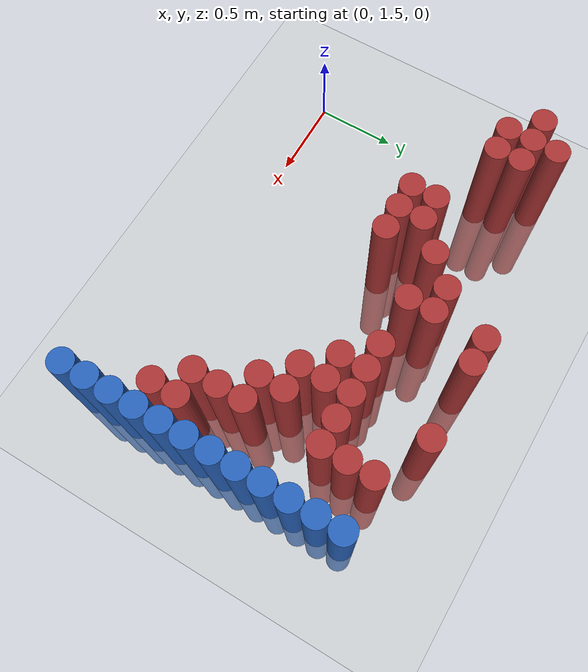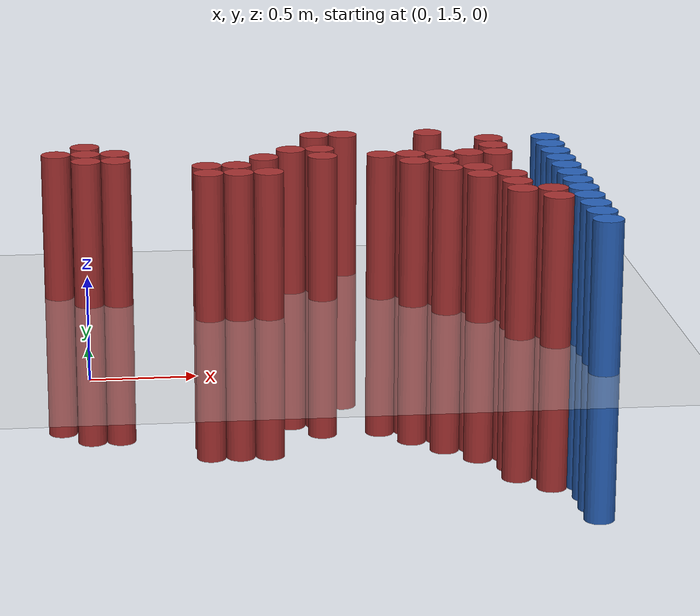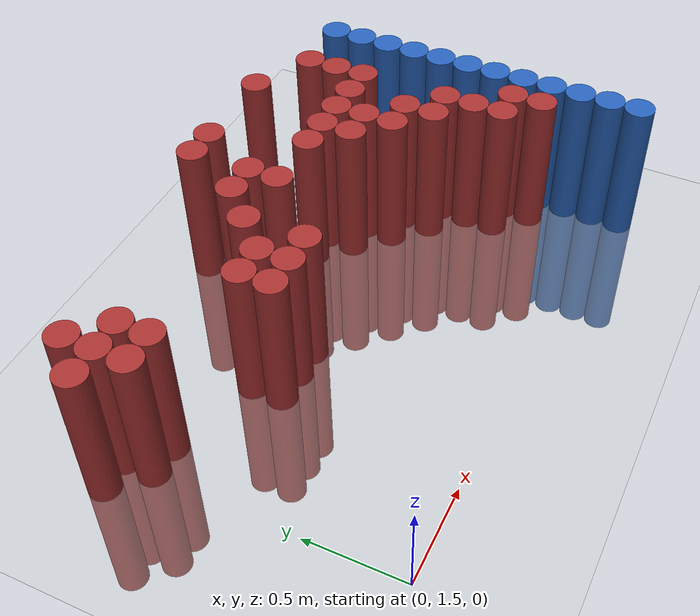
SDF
<sdf version="1.6">
 <world name="default">
  <model name="ground_plane">
   <static>1</static>
   <link name="link">
    <collision name="collision">
     <geometry><plane><normal>0 0 1</normal><size>100 100</size></plane></geometry>
     <surface><friction><ode><mu>100</mu><mu2>50</mu2></ode></friction></surface>
    </collision>
    <visual name="visual">
     <cast_shadows>0</cast_shadows>
     <geometry><plane><normal>0 0 1</normal><size>100 100</size></plane></geometry>
     <material>
      <script><uri>file://media/materials/scripts/gazebo.material</uri><name>Gazebo/Grey</name></script>
     </material>
    </visual>
   </link>
  </model>
  <model name="unit_cylinder_175">
   <static>1</static>
   <pose>-0.125000 2.875000 0.000000 0.000000 0.000000 0.000000</pose>
   <link name="link">
    <inertial>
     <mass>1</mass>
     <inertia><ixx>0.145833</ixx><ixy>0</ixy><ixz>0</ixz><iyy>0.145833</iyy><iyz>0</iyz><izz>0.125</izz></inertia>
    </inertial>
    <collision name="collision">
     <geometry><cylinder><radius>0.075000</radius><length>1.5</length></cylinder></geometry>
    </collision>
    <visual name="visual">
     <geometry><cylinder><radius>0.075000</radius><length>1.5</length></cylinder></geometry>
     <material>
      <ambient>0.648000 0.192000 0.192000 1</ambient>
      <diffuse>0.648000 0.192000 0.192000 1</diffuse>
     </material>
     <material>
      <script><name>Gazebo/Grey</name><uri>file://media/materials/scripts/gazebo.material</uri></script>
     </material>
    </visual>
   </link>
  </model>
  <model name="unit_cylinder_180">
   <static>1</static>
   <pose>0.025000 2.725000 0.000000 0.000000 0.000000 0.000000</pose>
   <link name="link">
    <inertial>
     <mass>1</mass>
     <inertia><ixx>0.145833</ixx><ixy>0</ixy><ixz>0</ixz><iyy>0.145833</iyy><iyz>0</iyz><izz>0.125</izz></inertia>
    </inertial>
    <collision name="collision">
     <geometry><cylinder><radius>0.075000</radius><length>1.5</length></cylinder></geometry>
    </collision>
    <visual name="visual">
     <geometry><cylinder><radius>0.075000</radius><length>1.5</length></cylinder></geometry>
     <material>
      <ambient>0.648000 0.192000 0.192000 1</ambient>
      <diffuse>0.648000 0.192000 0.192000 1</diffuse>
     </material>
     <material>
      <script><name>Gazebo/Grey</name><uri>file://media/materials/scripts/gazebo.material</uri></script>
     </material>
    </visual>
   </link>
  </model>
  <model name="unit_cylinder_181">
   <static>1</static>
   <pose>0.025000 2.875000 0.000000 0.000000 0.000000 0.000000</pose>
   <link name="link">
    <inertial>
     <mass>1</mass>
     <inertia><ixx>0.145833</ixx><ixy>0</ixy><ixz>0</ixz><iyy>0.145833</iyy><iyz>0</iyz><izz>0.125</izz></inertia>
    </inertial>
    <collision name="collision">
     <geometry><cylinder><radius>0.075000</radius><length>1.5</length></cylinder></geometry>
    </collision>
    <visual name="visual">
     <geometry><cylinder><radius>0.075000</radius><length>1.5</length></cylinder></geometry>
     <material>
      <ambient>0.648000 0.192000 0.192000 1</ambient>
      <diffuse>0.648000 0.192000 0.192000 1</diffuse>
     </material>
     <material>
      <script><name>Gazebo/Grey</name><uri>file://media/materials/scripts/gazebo.material</uri></script>
     </material>
    </visual>
   </link>
  </model>
  <model name="unit_cylinder_182">
   <static>1</static>
   <pose>0.025000 3.025000 0.000000 0.000000 0.000000 0.000000</pose>
   <link name="link">
    <inertial>
     <mass>1</mass>
     <inertia><ixx>0.145833</ixx><ixy>0</ixy><ixz>0</ixz><iyy>0.145833</iyy><iyz>0</iyz><izz>0.125</izz></inertia>
    </inertial>
    <collision name="collision">
     <geometry><cylinder><radius>0.075000</radius><length>1.5</length></cylinder></geometry>
    </collision>
    <visual name="visual">
     <geometry><cylinder><radius>0.075000</radius><length>1.5</length></cylinder></geometry>
     <material>
      <ambient>0.648000 0.192000 0.192000 1</ambient>
      <diffuse>0.648000 0.192000 0.192000 1</diffuse>
     </material>
     <material>
      <script><name>Gazebo/Grey</name><uri>file://media/materials/scripts/gazebo.material</uri></script>
     </material>
    </visual>
   </link>
  </model>
  <model name="unit_cylinder_183">
   <static>1</static>
   <pose>0.175000 2.725000 0.000000 0.000000 0.000000 0.000000</pose>
   <link name="link">
    <inertial>
     <mass>1</mass>
     <inertia><ixx>0.145833</ixx><ixy>0</ixy><ixz>0</ixz><iyy>0.145833</iyy><iyz>0</iyz><izz>0.125</izz></inertia>
    </inertial>
    <collision name="collision">
     <geometry><cylinder><radius>0.075000</radius><length>1.5</length></cylinder></geometry>
    </collision>
    <visual name="visual">
     <geometry><cylinder><radius>0.075000</radius><length>1.5</length></cylinder></geometry>
     <material>
      <ambient>0.648000 0.192000 0.192000 1</ambient>
      <diffuse>0.648000 0.192000 0.192000 1</diffuse>
     </material>
     <material>
      <script><name>Gazebo/Grey</name><uri>file://media/materials/scripts/gazebo.material</uri></script>
     </material>
    </visual>
   </link>
  </model>
  <model name="unit_cylinder_184">
   <static>1</static>
   <pose>0.175000 2.875000 0.000000 0.000000 0.000000 0.000000</pose>
   <link name="link">
    <inertial>
     <mass>1</mass>
     <inertia><ixx>0.145833</ixx><ixy>0</ixy><ixz>0</ixz><iyy>0.145833</iyy><iyz>0</iyz><izz>0.125</izz></inertia>
    </inertial>
    <collision name="collision">
     <geometry><cylinder><radius>0.075000</radius><length>1.5</length></cylinder></geometry>
    </collision>
    <visual name="visual">
     <geometry><cylinder><radius>0.075000</radius><length>1.5</length></cylinder></geometry>
     <material>
      <ambient>0.648000 0.192000 0.192000 1</ambient>
      <diffuse>0.648000 0.192000 0.192000 1</diffuse>
     </material>
     <material>
      <script><name>Gazebo/Grey</name><uri>file://media/materials/scripts/gazebo.material</uri></script>
     </material>
    </visual>
   </link>
  </model>
  <model name="unit_cylinder_191">
   <static>1</static>
   <pose>0.625000 2.425000 0.000000 0.000000 0.000000 0.000000</pose>
   <link name="link">
    <inertial>
     <mass>1</mass>
     <inertia><ixx>0.145833</ixx><ixy>0</ixy><ixz>0</ixz><iyy>0.145833</iyy><iyz>0</iyz><izz>0.125</izz></inertia>
    </inertial>
    <collision name="collision">
     <geometry><cylinder><radius>0.075000</radius><length>1.5</length></cylinder></geometry>
    </collision>
    <visual name="visual">
     <geometry><cylinder><radius>0.075000</radius><length>1.5</length></cylinder></geometry>
     <material>
      <ambient>0.648000 0.192000 0.192000 1</ambient>
      <diffuse>0.648000 0.192000 0.192000 1</diffuse>
     </material>
     <material>
      <script><name>Gazebo/Grey</name><uri>file://media/materials/scripts/gazebo.material</uri></script>
     </material>
    </visual>
   </link>
  </model>
  <model name="unit_cylinder_192">
   <static>1</static>
   <pose>0.625000 2.575000 0.000000 0.000000 0.000000 0.000000</pose>
   <link name="link">
    <inertial>
     <mass>1</mass>
     <inertia><ixx>0.145833</ixx><ixy>0</ixy><ixz>0</ixz><iyy>0.145833</iyy><iyz>0</iyz><izz>0.125</izz></inertia>
    </inertial>
    <collision name="collision">
     <geometry><cylinder><radius>0.075000</radius><length>1.5</length></cylinder></geometry>
    </collision>
    <visual name="visual">
     <geometry><cylinder><radius>0.075000</radius><length>1.5</length></cylinder></geometry>
     <material>
      <ambient>0.648000 0.192000 0.192000 1</ambient>
      <diffuse>0.648000 0.192000 0.192000 1</diffuse>
     </material>
     <material>
      <script><name>Gazebo/Grey</name><uri>file://media/materials/scripts/gazebo.material</uri></script>
     </material>
    </visual>
   </link>
  </model>
  <model name="unit_cylinder_198">
   <static>1</static>
   <pose>0.775000 2.425000 0.000000 0.000000 0.000000 0.000000</pose>
   <link name="link">
    <inertial>
     <mass>1</mass>
     <inertia><ixx>0.145833</ixx><ixy>0</ixy><ixz>0</ixz><iyy>0.145833</iyy><iyz>0</iyz><izz>0.125</izz></inertia>
    </inertial>
    <collision name="collision">
     <geometry><cylinder><radius>0.075000</radius><length>1.5</length></cylinder></geometry>
    </collision>
    <visual name="visual">
     <geometry><cylinder><radius>0.075000</radius><length>1.5</length></cylinder></geometry>
     <material>
      <ambient>0.648000 0.192000 0.192000 1</ambient>
      <diffuse>0.648000 0.192000 0.192000 1</diffuse>
     </material>
     <material>
      <script><name>Gazebo/Grey</name><uri>file://media/materials/scripts/gazebo.material</uri></script>
     </material>
    </visual>
   </link>
  </model>
  <model name="unit_cylinder_199">
   <static>1</static>
   <pose>0.775000 2.575000 0.000000 0.000000 0.000000 0.000000</pose>
   <link name="link">
    <inertial>
     <mass>1</mass>
     <inertia><ixx>0.145833</ixx><ixy>0</ixy><ixz>0</ixz><iyy>0.145833</iyy><iyz>0</iyz><izz>0.125</izz></inertia>
    </inertial>
    <collision name="collision">
     <geometry><cylinder><radius>0.075000</radius><length>1.5</length></cylinder></geometry>
    </collision>
    <visual name="visual">
     <geometry><cylinder><radius>0.075000</radius><length>1.5</length></cylinder></geometry>
     <material>
      <ambient>0.648000 0.192000 0.192000 1</ambient>
      <diffuse>0.648000 0.192000 0.192000 1</diffuse>
     </material>
     <material>
      <script><name>Gazebo/Grey</name><uri>file://media/materials/scripts/gazebo.material</uri></script>
     </material>
    </visual>
   </link>
  </model>
  <model name="unit_cylinder_203">
   <static>1</static>
   <pose>0.925000 2.425000 0.000000 0.000000 0.000000 0.000000</pose>
   <link name="link">
    <inertial>
     <mass>1</mass>
     <inertia><ixx>0.145833</ixx><ixy>0</ixy><ixz>0</ixz><iyy>0.145833</iyy><iyz>0</iyz><izz>0.125</izz></inertia>
    </inertial>
    <collision name="collision">
     <geometry><cylinder><radius>0.075000</radius><length>1.5</length></cylinder></geometry>
    </collision>
    <visual name="visual">
     <geometry><cylinder><radius>0.075000</radius><length>1.5</length></cylinder></geometry>
     <material>
      <ambient>0.648000 0.192000 0.192000 1</ambient>
      <diffuse>0.648000 0.192000 0.192000 1</diffuse>
     </material>
     <material>
      <script><name>Gazebo/Grey</name><uri>file://media/materials/scripts/gazebo.material</uri></script>
     </material>
    </visual>
   </link>
  </model>
  <model name="unit_cylinder_204">
   <static>1</static>
   <pose>0.925000 2.725000 0.000000 0.000000 0.000000 0.000000</pose>
   <link name="link">
    <inertial>
     <mass>1</mass>
     <inertia><ixx>0.145833</ixx><ixy>0</ixy><ixz>0</ixz><iyy>0.145833</iyy><iyz>0</iyz><izz>0.125</izz></inertia>
    </inertial>
    <collision name="collision">
     <geometry><cylinder><radius>0.075000</radius><length>1.5</length></cylinder></geometry>
    </collision>
    <visual name="visual">
     <geometry><cylinder><radius>0.075000</radius><length>1.5</length></cylinder></geometry>
     <material>
      <ambient>0.648000 0.192000 0.192000 1</ambient>
      <diffuse>0.648000 0.192000 0.192000 1</diffuse>
     </material>
     <material>
      <script><name>Gazebo/Grey</name><uri>file://media/materials/scripts/gazebo.material</uri></script>
     </material>
    </visual>
   </link>
  </model>
  <model name="unit_cylinder_209">
   <static>1</static>
   <pose>1.075000 2.875000 0.000000 0.000000 0.000000 0.000000</pose>
   <link name="link">
    <inertial>
     <mass>1</mass>
     <inertia><ixx>0.145833</ixx><ixy>0</ixy><ixz>0</ixz><iyy>0.145833</iyy><iyz>0</iyz><izz>0.125</izz></inertia>
    </inertial>
    <collision name="collision">
     <geometry><cylinder><radius>0.075000</radius><length>1.5</length></cylinder></geometry>
    </collision>
    <visual name="visual">
     <geometry><cylinder><radius>0.075000</radius><length>1.5</length></cylinder></geometry>
     <material>
      <ambient>0.648000 0.192000 0.192000 1</ambient>
      <diffuse>0.648000 0.192000 0.192000 1</diffuse>
     </material>
     <material>
      <script><name>Gazebo/Grey</name><uri>file://media/materials/scripts/gazebo.material</uri></script>
     </material>
    </visual>
   </link>
  </model>
  <model name="unit_cylinder_212">
   <static>1</static>
   <pose>1.225000 2.725000 0.000000 0.000000 0.000000 0.000000</pose>
   <link name="link">
    <inertial>
     <mass>1</mass>
     <inertia><ixx>0.145833</ixx><ixy>0</ixy><ixz>0</ixz><iyy>0.145833</iyy><iyz>0</iyz><izz>0.125</izz></inertia>
    </inertial>
    <collision name="collision">
     <geometry><cylinder><radius>0.075000</radius><length>1.5</length></cylinder></geometry>
    </collision>
    <visual name="visual">
     <geometry><cylinder><radius>0.075000</radius><length>1.5</length></cylinder></geometry>
     <material>
      <ambient>0.648000 0.192000 0.192000 1</ambient>
      <diffuse>0.648000 0.192000 0.192000 1</diffuse>
     </material>
     <material>
      <script><name>Gazebo/Grey</name><uri>file://media/materials/scripts/gazebo.material</uri></script>
     </material>
    </visual>
   </link>
  </model>
  <model name="unit_cylinder_213">
   <static>1</static>
   <pose>1.225000 2.875000 0.000000 0.000000 0.000000 0.000000</pose>
   <link name="link">
    <inertial>
     <mass>1</mass>
     <inertia><ixx>0.145833</ixx><ixy>0</ixy><ixz>0</ixz><iyy>0.145833</iyy><iyz>0</iyz><izz>0.125</izz></inertia>
    </inertial>
    <collision name="collision">
     <geometry><cylinder><radius>0.075000</radius><length>1.5</length></cylinder></geometry>
    </collision>
    <visual name="visual">
     <geometry><cylinder><radius>0.075000</radius><length>1.5</length></cylinder></geometry>
     <material>
      <ambient>0.648000 0.192000 0.192000 1</ambient>
      <diffuse>0.648000 0.192000 0.192000 1</diffuse>
     </material>
     <material>
      <script><name>Gazebo/Grey</name><uri>file://media/materials/scripts/gazebo.material</uri></script>
     </material>
    </visual>
   </link>
  </model>
  <model name="unit_cylinder_214">
   <static>1</static>
   <pose>1.225000 3.175000 0.000000 0.000000 0.000000 0.000000</pose>
   <link name="link">
    <inertial>
     <mass>1</mass>
     <inertia><ixx>0.145833</ixx><ixy>0</ixy><ixz>0</ixz><iyy>0.145833</iyy><iyz>0</iyz><izz>0.125</izz></inertia>
    </inertial>
    <collision name="collision">
     <geometry><cylinder><radius>0.075000</radius><length>1.5</length></cylinder></geometry>
    </collision>
    <visual name="visual">
     <geometry><cylinder><radius>0.075000</radius><length>1.5</length></cylinder></geometry>
     <material>
      <ambient>0.648000 0.192000 0.192000 1</ambient>
      <diffuse>0.648000 0.192000 0.192000 1</diffuse>
     </material>
     <material>
      <script><name>Gazebo/Grey</name><uri>file://media/materials/scripts/gazebo.material</uri></script>
     </material>
    </visual>
   </link>
  </model>
  <model name="unit_cylinder_219">
   <static>1</static>
   <pose>1.375000 3.175000 0.000000 0.000000 0.000000 0.000000</pose>
   <link name="link">
    <inertial>
     <mass>1</mass>
     <inertia><ixx>0.145833</ixx><ixy>0</ixy><ixz>0</ixz><iyy>0.145833</iyy><iyz>0</iyz><izz>0.125</izz></inertia>
    </inertial>
    <collision name="collision">
     <geometry><cylinder><radius>0.075000</radius><length>1.5</length></cylinder></geometry>
    </collision>
    <visual name="visual">
     <geometry><cylinder><radius>0.075000</radius><length>1.5</length></cylinder></geometry>
     <material>
      <ambient>0.648000 0.192000 0.192000 1</ambient>
      <diffuse>0.648000 0.192000 0.192000 1</diffuse>
     </material>
     <material>
      <script><name>Gazebo/Grey</name><uri>file://media/materials/scripts/gazebo.material</uri></script>
     </material>
    </visual>
   </link>
  </model>
  <model name="unit_cylinder_222">
   <static>1</static>
   <pose>1.525000 2.725000 0.000000 0.000000 0.000000 0.000000</pose>
   <link name="link">
    <inertial>
     <mass>1</mass>
     <inertia><ixx>0.145833</ixx><ixy>0</ixy><ixz>0</ixz><iyy>0.145833</iyy><iyz>0</iyz><izz>0.125</izz></inertia>
    </inertial>
    <collision name="collision">
     <geometry><cylinder><radius>0.075000</radius><length>1.5</length></cylinder></geometry>
    </collision>
    <visual name="visual">
     <geometry><cylinder><radius>0.075000</radius><length>1.5</length></cylinder></geometry>
     <material>
      <ambient>0.648000 0.192000 0.192000 1</ambient>
      <diffuse>0.648000 0.192000 0.192000 1</diffuse>
     </material>
     <material>
      <script><name>Gazebo/Grey</name><uri>file://media/materials/scripts/gazebo.material</uri></script>
     </material>
    </visual>
   </link>
  </model>
  <model name="unit_cylinder_223">
   <static>1</static>
   <pose>1.675000 2.575000 0.000000 0.000000 0.000000 0.000000</pose>
   <link name="link">
    <inertial>
     <mass>1</mass>
     <inertia><ixx>0.145833</ixx><ixy>0</ixy><ixz>0</ixz><iyy>0.145833</iyy><iyz>0</iyz><izz>0.125</izz></inertia>
    </inertial>
    <collision name="collision">
     <geometry><cylinder><radius>0.075000</radius><length>1.5</length></cylinder></geometry>
    </collision>
    <visual name="visual">
     <geometry><cylinder><radius>0.075000</radius><length>1.5</length></cylinder></geometry>
     <material>
      <ambient>0.648000 0.192000 0.192000 1</ambient>
      <diffuse>0.648000 0.192000 0.192000 1</diffuse>
     </material>
     <material>
      <script><name>Gazebo/Grey</name><uri>file://media/materials/scripts/gazebo.material</uri></script>
     </material>
    </visual>
   </link>
  </model>
  <model name="unit_cylinder_224">
   <static>1</static>
   <pose>1.675000 2.725000 0.000000 0.000000 0.000000 0.000000</pose>
   <link name="link">
    <inertial>
     <mass>1</mass>
     <inertia><ixx>0.145833</ixx><ixy>0</ixy><ixz>0</ixz><iyy>0.145833</iyy><iyz>0</iyz><izz>0.125</izz></inertia>
    </inertial>
    <collision name="collision">
     <geometry><cylinder><radius>0.075000</radius><length>1.5</length></cylinder></geometry>
    </collision>
    <visual name="visual">
     <geometry><cylinder><radius>0.075000</radius><length>1.5</length></cylinder></geometry>
     <material>
      <ambient>0.648000 0.192000 0.192000 1</ambient>
      <diffuse>0.648000 0.192000 0.192000 1</diffuse>
     </material>
     <material>
      <script><name>Gazebo/Grey</name><uri>file://media/materials/scripts/gazebo.material</uri></script>
     </material>
    </visual>
   </link>
  </model>
  <model name="unit_cylinder_225">
   <static>1</static>
   <pose>1.825000 2.425000 0.000000 0.000000 0.000000 0.000000</pose>
   <link name="link">
    <inertial>
     <mass>1</mass>
     <inertia><ixx>0.145833</ixx><ixy>0</ixy><ixz>0</ixz><iyy>0.145833</iyy><iyz>0</iyz><izz>0.125</izz></inertia>
    </inertial>
    <collision name="collision">
     <geometry><cylinder><radius>0.075000</radius><length>1.5</length></cylinder></geometry>
    </collision>
    <visual name="visual">
     <geometry><cylinder><radius>0.075000</radius><length>1.5</length></cylinder></geometry>
     <material>
      <ambient>0.648000 0.192000 0.192000 1</ambient>
      <diffuse>0.648000 0.192000 0.192000 1</diffuse>
     </material>
     <material>
      <script><name>Gazebo/Grey</name><uri>file://media/materials/scripts/gazebo.material</uri></script>
     </material>
    </visual>
   </link>
  </model>
  <model name="unit_cylinder_226">
   <static>1</static>
   <pose>1.825000 2.575000 0.000000 0.000000 0.000000 0.000000</pose>
   <link name="link">
    <inertial>
     <mass>1</mass>
     <inertia><ixx>0.145833</ixx><ixy>0</ixy><ixz>0</ixz><iyy>0.145833</iyy><iyz>0</iyz><izz>0.125</izz></inertia>
    </inertial>
    <collision name="collision">
     <geometry><cylinder><radius>0.075000</radius><length>1.5</length></cylinder></geometry>
    </collision>
    <visual name="visual">
     <geometry><cylinder><radius>0.075000</radius><length>1.5</length></cylinder></geometry>
     <material>
      <ambient>0.648000 0.192000 0.192000 1</ambient>
      <diffuse>0.648000 0.192000 0.192000 1</diffuse>
     </material>
     <material>
      <script><name>Gazebo/Grey</name><uri>file://media/materials/scripts/gazebo.material</uri></script>
     </material>
    </visual>
   </link>
  </model>
  <model name="unit_cylinder_227">
   <static>1</static>
   <pose>1.825000 2.725000 0.000000 0.000000 0.000000 0.000000</pose>
   <link name="link">
    <inertial>
     <mass>1</mass>
     <inertia><ixx>0.145833</ixx><ixy>0</ixy><ixz>0</ixz><iyy>0.145833</iyy><iyz>0</iyz><izz>0.125</izz></inertia>
    </inertial>
    <collision name="collision">
     <geometry><cylinder><radius>0.075000</radius><length>1.5</length></cylinder></geometry>
    </collision>
    <visual name="visual">
     <geometry><cylinder><radius>0.075000</radius><length>1.5</length></cylinder></geometry>
     <material>
      <ambient>0.648000 0.192000 0.192000 1</ambient>
      <diffuse>0.648000 0.192000 0.192000 1</diffuse>
     </material>
     <material>
      <script><name>Gazebo/Grey</name><uri>file://media/materials/scripts/gazebo.material</uri></script>
     </material>
    </visual>
   </link>
  </model>
  <model name="unit_cylinder_228">
   <static>1</static>
   <pose>1.825000 3.175000 0.000000 0.000000 0.000000 0.000000</pose>
   <link name="link">
    <inertial>
     <mass>1</mass>
     <inertia><ixx>0.145833</ixx><ixy>0</ixy><ixz>0</ixz><iyy>0.145833</iyy><iyz>0</iyz><izz>0.125</izz></inertia>
    </inertial>
    <collision name="collision">
     <geometry><cylinder><radius>0.075000</radius><length>1.5</length></cylinder></geometry>
    </collision>
    <visual name="visual">
     <geometry><cylinder><radius>0.075000</radius><length>1.5</length></cylinder></geometry>
     <material>
      <ambient>0.648000 0.192000 0.192000 1</ambient>
      <diffuse>0.648000 0.192000 0.192000 1</diffuse>
     </material>
     <material>
      <script><name>Gazebo/Grey</name><uri>file://media/materials/scripts/gazebo.material</uri></script>
     </material>
    </visual>
   </link>
  </model>
  <model name="unit_cylinder_232">
   <static>1</static>
   <pose>1.975000 2.275000 0.000000 0.000000 0.000000 0.000000</pose>
   <link name="link">
    <inertial>
     <mass>1</mass>
     <inertia><ixx>0.145833</ixx><ixy>0</ixy><ixz>0</ixz><iyy>0.145833</iyy><iyz>0</iyz><izz>0.125</izz></inertia>
    </inertial>
    <collision name="collision">
     <geometry><cylinder><radius>0.075000</radius><length>1.5</length></cylinder></geometry>
    </collision>
    <visual name="visual">
     <geometry><cylinder><radius>0.075000</radius><length>1.5</length></cylinder></geometry>
     <material>
      <ambient>0.648000 0.192000 0.192000 1</ambient>
      <diffuse>0.648000 0.192000 0.192000 1</diffuse>
     </material>
     <material>
      <script><name>Gazebo/Grey</name><uri>file://media/materials/scripts/gazebo.material</uri></script>
     </material>
    </visual>
   </link>
  </model>
  <model name="unit_cylinder_233">
   <static>1</static>
   <pose>1.975000 2.425000 0.000000 0.000000 0.000000 0.000000</pose>
   <link name="link">
    <inertial>
     <mass>1</mass>
     <inertia><ixx>0.145833</ixx><ixy>0</ixy><ixz>0</ixz><iyy>0.145833</iyy><iyz>0</iyz><izz>0.125</izz></inertia>
    </inertial>
    <collision name="collision">
     <geometry><cylinder><radius>0.075000</radius><length>1.5</length></cylinder></geometry>
    </collision>
    <visual name="visual">
     <geometry><cylinder><radius>0.075000</radius><length>1.5</length></cylinder></geometry>
     <material>
      <ambient>0.648000 0.192000 0.192000 1</ambient>
      <diffuse>0.648000 0.192000 0.192000 1</diffuse>
     </material>
     <material>
      <script><name>Gazebo/Grey</name><uri>file://media/materials/scripts/gazebo.material</uri></script>
     </material>
    </visual>
   </link>
  </model>
  <model name="unit_cylinder_234">
   <static>1</static>
   <pose>1.975000 2.725000 0.000000 0.000000 0.000000 0.000000</pose>
   <link name="link">
    <inertial>
     <mass>1</mass>
     <inertia><ixx>0.145833</ixx><ixy>0</ixy><ixz>0</ixz><iyy>0.145833</iyy><iyz>0</iyz><izz>0.125</izz></inertia>
    </inertial>
    <collision name="collision">
     <geometry><cylinder><radius>0.075000</radius><length>1.5</length></cylinder></geometry>
    </collision>
    <visual name="visual">
     <geometry><cylinder><radius>0.075000</radius><length>1.5</length></cylinder></geometry>
     <material>
      <ambient>0.648000 0.192000 0.192000 1</ambient>
      <diffuse>0.648000 0.192000 0.192000 1</diffuse>
     </material>
     <material>
      <script><name>Gazebo/Grey</name><uri>file://media/materials/scripts/gazebo.material</uri></script>
     </material>
    </visual>
   </link>
  </model>
  <model name="unit_cylinder_240">
   <static>1</static>
   <pose>2.125000 1.975000 0.000000 0.000000 0.000000 0.000000</pose>
   <link name="link">
    <inertial>
     <mass>1</mass>
     <inertia><ixx>0.145833</ixx><ixy>0</ixy><ixz>0</ixz><iyy>0.145833</iyy><iyz>0</iyz><izz>0.125</izz></inertia>
    </inertial>
    <collision name="collision">
     <geometry><cylinder><radius>0.075000</radius><length>1.5</length></cylinder></geometry>
    </collision>
    <visual name="visual">
     <geometry><cylinder><radius>0.075000</radius><length>1.5</length></cylinder></geometry>
     <material>
      <ambient>0.648000 0.192000 0.192000 1</ambient>
      <diffuse>0.648000 0.192000 0.192000 1</diffuse>
     </material>
     <material>
      <script><name>Gazebo/Grey</name><uri>file://media/materials/scripts/gazebo.material</uri></script>
     </material>
    </visual>
   </link>
  </model>
  <model name="unit_cylinder_241">
   <static>1</static>
   <pose>2.125000 2.125000 0.000000 0.000000 0.000000 0.000000</pose>
   <link name="link">
    <inertial>
     <mass>1</mass>
     <inertia><ixx>0.145833</ixx><ixy>0</ixy><ixz>0</ixz><iyy>0.145833</iyy><iyz>0</iyz><izz>0.125</izz></inertia>
    </inertial>
    <collision name="collision">
     <geometry><cylinder><radius>0.075000</radius><length>1.5</length></cylinder></geometry>
    </collision>
    <visual name="visual">
     <geometry><cylinder><radius>0.075000</radius><length>1.5</length></cylinder></geometry>
     <material>
      <ambient>0.648000 0.192000 0.192000 1</ambient>
      <diffuse>0.648000 0.192000 0.192000 1</diffuse>
     </material>
     <material>
      <script><name>Gazebo/Grey</name><uri>file://media/materials/scripts/gazebo.material</uri></script>
     </material>
    </visual>
   </link>
  </model>
  <model name="unit_cylinder_242">
   <static>1</static>
   <pose>2.125000 2.275000 0.000000 0.000000 0.000000 0.000000</pose>
   <link name="link">
    <inertial>
     <mass>1</mass>
     <inertia><ixx>0.145833</ixx><ixy>0</ixy><ixz>0</ixz><iyy>0.145833</iyy><iyz>0</iyz><izz>0.125</izz></inertia>
    </inertial>
    <collision name="collision">
     <geometry><cylinder><radius>0.075000</radius><length>1.5</length></cylinder></geometry>
    </collision>
    <visual name="visual">
     <geometry><cylinder><radius>0.075000</radius><length>1.5</length></cylinder></geometry>
     <material>
      <ambient>0.648000 0.192000 0.192000 1</ambient>
      <diffuse>0.648000 0.192000 0.192000 1</diffuse>
     </material>
     <material>
      <script><name>Gazebo/Grey</name><uri>file://media/materials/scripts/gazebo.material</uri></script>
     </material>
    </visual>
   </link>
  </model>
  <model name="unit_cylinder_243">
   <static>1</static>
   <pose>2.125000 2.725000 0.000000 0.000000 0.000000 0.000000</pose>
   <link name="link">
    <inertial>
     <mass>1</mass>
     <inertia><ixx>0.145833</ixx><ixy>0</ixy><ixz>0</ixz><iyy>0.145833</iyy><iyz>0</iyz><izz>0.125</izz></inertia>
    </inertial>
    <collision name="collision">
     <geometry><cylinder><radius>0.075000</radius><length>1.5</length></cylinder></geometry>
    </collision>
    <visual name="visual">
     <geometry><cylinder><radius>0.075000</radius><length>1.5</length></cylinder></geometry>
     <material>
      <ambient>0.648000 0.192000 0.192000 1</ambient>
      <diffuse>0.648000 0.192000 0.192000 1</diffuse>
     </material>
     <material>
      <script><name>Gazebo/Grey</name><uri>file://media/materials/scripts/gazebo.material</uri></script>
     </material>
    </visual>
   </link>
  </model>
  <model name="unit_cylinder_244">
   <static>1</static>
   <pose>2.125000 2.875000 0.000000 0.000000 0.000000 0.000000</pose>
   <link name="link">
    <inertial>
     <mass>1</mass>
     <inertia><ixx>0.145833</ixx><ixy>0</ixy><ixz>0</ixz><iyy>0.145833</iyy><iyz>0</iyz><izz>0.125</izz></inertia>
    </inertial>
    <collision name="collision">
     <geometry><cylinder><radius>0.075000</radius><length>1.5</length></cylinder></geometry>
    </collision>
    <visual name="visual">
     <geometry><cylinder><radius>0.075000</radius><length>1.5</length></cylinder></geometry>
     <material>
      <ambient>0.648000 0.192000 0.192000 1</ambient>
      <diffuse>0.648000 0.192000 0.192000 1</diffuse>
     </material>
     <material>
      <script><name>Gazebo/Grey</name><uri>file://media/materials/scripts/gazebo.material</uri></script>
     </material>
    </visual>
   </link>
  </model>
  <model name="unit_cylinder_245">
   <static>1</static>
   <pose>2.125000 3.025000 0.000000 0.000000 0.000000 0.000000</pose>
   <link name="link">
    <inertial>
     <mass>1</mass>
     <inertia><ixx>0.145833</ixx><ixy>0</ixy><ixz>0</ixz><iyy>0.145833</iyy><iyz>0</iyz><izz>0.125</izz></inertia>
    </inertial>
    <collision name="collision">
     <geometry><cylinder><radius>0.075000</radius><length>1.5</length></cylinder></geometry>
    </collision>
    <visual name="visual">
     <geometry><cylinder><radius>0.075000</radius><length>1.5</length></cylinder></geometry>
     <material>
      <ambient>0.648000 0.192000 0.192000 1</ambient>
      <diffuse>0.648000 0.192000 0.192000 1</diffuse>
     </material>
     <material>
      <script><name>Gazebo/Grey</name><uri>file://media/materials/scripts/gazebo.material</uri></script>
     </material>
    </visual>
   </link>
  </model>
  <model name="unit_cylinder_249">
   <static>1</static>
   <pose>2.275000 1.825000 0.000000 0.000000 0.000000 0.000000</pose>
   <link name="link">
    <inertial>
     <mass>1</mass>
     <inertia><ixx>0.145833</ixx><ixy>0</ixy><ixz>0</ixz><iyy>0.145833</iyy><iyz>0</iyz><izz>0.125</izz></inertia>
    </inertial>
    <collision name="collision">
     <geometry><cylinder><radius>0.075000</radius><length>1.5</length></cylinder></geometry>
    </collision>
    <visual name="visual">
     <geometry><cylinder><radius>0.075000</radius><length>1.5</length></cylinder></geometry>
     <material>
      <ambient>0.648000 0.192000 0.192000 1</ambient>
      <diffuse>0.648000 0.192000 0.192000 1</diffuse>
     </material>
     <material>
      <script><name>Gazebo/Grey</name><uri>file://media/materials/scripts/gazebo.material</uri></script>
     </material>
    </visual>
   </link>
  </model>
  <model name="unit_cylinder_250">
   <static>1</static>
   <pose>2.275000 1.975000 0.000000 0.000000 0.000000 0.000000</pose>
   <link name="link">
    <inertial>
     <mass>1</mass>
     <inertia><ixx>0.145833</ixx><ixy>0</ixy><ixz>0</ixz><iyy>0.145833</iyy><iyz>0</iyz><izz>0.125</izz></inertia>
    </inertial>
    <collision name="collision">
     <geometry><cylinder><radius>0.075000</radius><length>1.5</length></cylinder></geometry>
    </collision>
    <visual name="visual">
     <geometry><cylinder><radius>0.075000</radius><length>1.5</length></cylinder></geometry>
     <material>
      <ambient>0.648000 0.192000 0.192000 1</ambient>
      <diffuse>0.648000 0.192000 0.192000 1</diffuse>
     </material>
     <material>
      <script><name>Gazebo/Grey</name><uri>file://media/materials/scripts/gazebo.material</uri></script>
     </material>
    </visual>
   </link>
  </model>
  <model name="unit_cylinder_260">
   <static>1</static>
   <pose>2.425000 1.375000 0.000000 0.000000 0.000000 0.000000</pose>
   <link name="link">
    <inertial>
     <mass>1</mass>
     <inertia><ixx>0.145833</ixx><ixy>0</ixy><ixz>0</ixz><iyy>0.145833</iyy><iyz>0</iyz><izz>0.125</izz></inertia>
    </inertial>
    <collision name="collision">
     <geometry><cylinder><radius>0.075000</radius><length>1.5</length></cylinder></geometry>
    </collision>
    <visual name="visual">
     <geometry><cylinder><radius>0.075000</radius><length>1.5</length></cylinder></geometry>
     <material>
      <ambient>0.152000 0.379000 0.720000 1</ambient>
      <diffuse>0.152000 0.379000 0.720000 1</diffuse>
     </material>
     <material>
      <script><name>Gazebo/Grey</name><uri>file://media/materials/scripts/gazebo.material</uri></script>
     </material>
    </visual>
   </link>
  </model>
  <model name="unit_cylinder_261">
   <static>1</static>
   <pose>2.425000 1.525000 0.000000 0.000000 0.000000 0.000000</pose>
   <link name="link">
    <inertial>
     <mass>1</mass>
     <inertia><ixx>0.145833</ixx><ixy>0</ixy><ixz>0</ixz><iyy>0.145833</iyy><iyz>0</iyz><izz>0.125</izz></inertia>
    </inertial>
    <collision name="collision">
     <geometry><cylinder><radius>0.075000</radius><length>1.5</length></cylinder></geometry>
    </collision>
    <visual name="visual">
     <geometry><cylinder><radius>0.075000</radius><length>1.5</length></cylinder></geometry>
     <material>
      <ambient>0.152000 0.379000 0.720000 1</ambient>
      <diffuse>0.152000 0.379000 0.720000 1</diffuse>
     </material>
     <material>
      <script><name>Gazebo/Grey</name><uri>file://media/materials/scripts/gazebo.material</uri></script>
     </material>
    </visual>
   </link>
  </model>
  <model name="unit_cylinder_262">
   <static>1</static>
   <pose>2.425000 1.675000 0.000000 0.000000 0.000000 0.000000</pose>
   <link name="link">
    <inertial>
     <mass>1</mass>
     <inertia><ixx>0.145833</ixx><ixy>0</ixy><ixz>0</ixz><iyy>0.145833</iyy><iyz>0</iyz><izz>0.125</izz></inertia>
    </inertial>
    <collision name="collision">
     <geometry><cylinder><radius>0.075000</radius><length>1.5</length></cylinder></geometry>
    </collision>
    <visual name="visual">
     <geometry><cylinder><radius>0.075000</radius><length>1.5</length></cylinder></geometry>
     <material>
      <ambient>0.152000 0.379000 0.720000 1</ambient>
      <diffuse>0.152000 0.379000 0.720000 1</diffuse>
     </material>
     <material>
      <script><name>Gazebo/Grey</name><uri>file://media/materials/scripts/gazebo.material</uri></script>
     </material>
    </visual>
   </link>
  </model>
  <model name="unit_cylinder_263">
   <static>1</static>
   <pose>2.425000 1.825000 0.000000 0.000000 0.000000 0.000000</pose>
   <link name="link">
    <inertial>
     <mass>1</mass>
     <inertia><ixx>0.145833</ixx><ixy>0</ixy><ixz>0</ixz><iyy>0.145833</iyy><iyz>0</iyz><izz>0.125</izz></inertia>
    </inertial>
    <collision name="collision">
     <geometry><cylinder><radius>0.075000</radius><length>1.5</length></cylinder></geometry>
    </collision>
    <visual name="visual">
     <geometry><cylinder><radius>0.075000</radius><length>1.5</length></cylinder></geometry>
     <material>
      <ambient>0.152000 0.379000 0.720000 1</ambient>
      <diffuse>0.152000 0.379000 0.720000 1</diffuse>
     </material>
     <material>
      <script><name>Gazebo/Grey</name><uri>file://media/materials/scripts/gazebo.material</uri></script>
     </material>
    </visual>
   </link>
  </model>
  <model name="unit_cylinder_264">
   <static>1</static>
   <pose>2.425000 1.975000 0.000000 0.000000 0.000000 0.000000</pose>
   <link name="link">
    <inertial>
     <mass>1</mass>
     <inertia><ixx>0.145833</ixx><ixy>0</ixy><ixz>0</ixz><iyy>0.145833</iyy><iyz>0</iyz><izz>0.125</izz></inertia>
    </inertial>
    <collision name="collision">
     <geometry><cylinder><radius>0.075000</radius><length>1.5</length></cylinder></geometry>
    </collision>
    <visual name="visual">
     <geometry><cylinder><radius>0.075000</radius><length>1.5</length></cylinder></geometry>
     <material>
      <ambient>0.152000 0.379000 0.720000 1</ambient>
      <diffuse>0.152000 0.379000 0.720000 1</diffuse>
     </material>
     <material>
      <script><name>Gazebo/Grey</name><uri>file://media/materials/scripts/gazebo.material</uri></script>
     </material>
    </visual>
   </link>
  </model>
  <model name="unit_cylinder_265">
   <static>1</static>
   <pose>2.425000 2.125000 0.000000 0.000000 0.000000 0.000000</pose>
   <link name="link">
    <inertial>
     <mass>1</mass>
     <inertia><ixx>0.145833</ixx><ixy>0</ixy><ixz>0</ixz><iyy>0.145833</iyy><iyz>0</iyz><izz>0.125</izz></inertia>
    </inertial>
    <collision name="collision">
     <geometry><cylinder><radius>0.075000</radius><length>1.5</length></cylinder></geometry>
    </collision>
    <visual name="visual">
     <geometry><cylinder><radius>0.075000</radius><length>1.5</length></cylinder></geometry>
     <material>
      <ambient>0.152000 0.379000 0.720000 1</ambient>
      <diffuse>0.152000 0.379000 0.720000 1</diffuse>
     </material>
     <material>
      <script><name>Gazebo/Grey</name><uri>file://media/materials/scripts/gazebo.material</uri></script>
     </material>
    </visual>
   </link>
  </model>
  <model name="unit_cylinder_266">
   <static>1</static>
   <pose>2.425000 2.275000 0.000000 0.000000 0.000000 0.000000</pose>
   <link name="link">
    <inertial>
     <mass>1</mass>
     <inertia><ixx>0.145833</ixx><ixy>0</ixy><ixz>0</ixz><iyy>0.145833</iyy><iyz>0</iyz><izz>0.125</izz></inertia>
    </inertial>
    <collision name="collision">
     <geometry><cylinder><radius>0.075000</radius><length>1.5</length></cylinder></geometry>
    </collision>
    <visual name="visual">
     <geometry><cylinder><radius>0.075000</radius><length>1.5</length></cylinder></geometry>
     <material>
      <ambient>0.152000 0.379000 0.720000 1</ambient>
      <diffuse>0.152000 0.379000 0.720000 1</diffuse>
     </material>
     <material>
      <script><name>Gazebo/Grey</name><uri>file://media/materials/scripts/gazebo.material</uri></script>
     </material>
    </visual>
   </link>
  </model>
  <model name="unit_cylinder_267">
   <static>1</static>
   <pose>2.425000 2.425000 0.000000 0.000000 0.000000 0.000000</pose>
   <link name="link">
    <inertial>
     <mass>1</mass>
     <inertia><ixx>0.145833</ixx><ixy>0</ixy><ixz>0</ixz><iyy>0.145833</iyy><iyz>0</iyz><izz>0.125</izz></inertia>
    </inertial>
    <collision name="collision">
     <geometry><cylinder><radius>0.075000</radius><length>1.5</length></cylinder></geometry>
    </collision>
    <visual name="visual">
     <geometry><cylinder><radius>0.075000</radius><length>1.5</length></cylinder></geometry>
     <material>
      <ambient>0.152000 0.379000 0.720000 1</ambient>
      <diffuse>0.152000 0.379000 0.720000 1</diffuse>
     </material>
     <material>
      <script><name>Gazebo/Grey</name><uri>file://media/materials/scripts/gazebo.material</uri></script>
     </material>
    </visual>
   </link>
  </model>
  <model name="unit_cylinder_268">
   <static>1</static>
   <pose>2.425000 2.575000 0.000000 0.000000 0.000000 0.000000</pose>
   <link name="link">
    <inertial>
     <mass>1</mass>
     <inertia><ixx>0.145833</ixx><ixy>0</ixy><ixz>0</ixz><iyy>0.145833</iyy><iyz>0</iyz><izz>0.125</izz></inertia>
    </inertial>
    <collision name="collision">
     <geometry><cylinder><radius>0.075000</radius><length>1.5</length></cylinder></geometry>
    </collision>
    <visual name="visual">
     <geometry><cylinder><radius>0.075000</radius><length>1.5</length></cylinder></geometry>
     <material>
      <ambient>0.152000 0.379000 0.720000 1</ambient>
      <diffuse>0.152000 0.379000 0.720000 1</diffuse>
     </material>
     <material>
      <script><name>Gazebo/Grey</name><uri>file://media/materials/scripts/gazebo.material</uri></script>
     </material>
    </visual>
   </link>
  </model>
  <model name="unit_cylinder_269">
   <static>1</static>
   <pose>2.425000 2.725000 0.000000 0.000000 0.000000 0.000000</pose>
   <link name="link">
    <inertial>
     <mass>1</mass>
     <inertia><ixx>0.145833</ixx><ixy>0</ixy><ixz>0</ixz><iyy>0.145833</iyy><iyz>0</iyz><izz>0.125</izz></inertia>
    </inertial>
    <collision name="collision">
     <geometry><cylinder><radius>0.075000</radius><length>1.5</length></cylinder></geometry>
    </collision>
    <visual name="visual">
     <geometry><cylinder><radius>0.075000</radius><length>1.5</length></cylinder></geometry>
     <material>
      <ambient>0.152000 0.379000 0.720000 1</ambient>
      <diffuse>0.152000 0.379000 0.720000 1</diffuse>
     </material>
     <material>
      <script><name>Gazebo/Grey</name><uri>file://media/materials/scripts/gazebo.material</uri></script>
     </material>
    </visual>
   </link>
  </model>
  <model name="unit_cylinder_270">
   <static>1</static>
   <pose>2.425000 2.875000 0.000000 0.000000 0.000000 0.000000</pose>
   <link name="link">
    <inertial>
     <mass>1</mass>
     <inertia><ixx>0.145833</ixx><ixy>0</ixy><ixz>0</ixz><iyy>0.145833</iyy><iyz>0</iyz><izz>0.125</izz></inertia>
    </inertial>
    <collision name="collision">
     <geometry><cylinder><radius>0.075000</radius><length>1.5</length></cylinder></geometry>
    </collision>
    <visual name="visual">
     <geometry><cylinder><radius>0.075000</radius><length>1.5</length></cylinder></geometry>
     <material>
      <ambient>0.152000 0.379000 0.720000 1</ambient>
      <diffuse>0.152000 0.379000 0.720000 1</diffuse>
     </material>
     <material>
      <script><name>Gazebo/Grey</name><uri>file://media/materials/scripts/gazebo.material</uri></script>
     </material>
    </visual>
   </link>
  </model>
  <model name="unit_cylinder_271">
   <static>1</static>
   <pose>2.425000 3.025000 0.000000 0.000000 0.000000 0.000000</pose>
   <link name="link">
    <inertial>
     <mass>1</mass>
     <inertia><ixx>0.145833</ixx><ixy>0</ixy><ixz>0</ixz><iyy>0.145833</iyy><iyz>0</iyz><izz>0.125</izz></inertia>
    </inertial>
    <collision name="collision">
     <geometry><cylinder><radius>0.075000</radius><length>1.5</length></cylinder></geometry>
    </collision>
    <visual name="visual">
     <geometry><cylinder><radius>0.075000</radius><length>1.5</length></cylinder></geometry>
     <material>
      <ambient>0.152000 0.379000 0.720000 1</ambient>
      <diffuse>0.152000 0.379000 0.720000 1</diffuse>
     </material>
     <material>
      <script><name>Gazebo/Grey</name><uri>file://media/materials/scripts/gazebo.material</uri></script>
     </material>
    </visual>
   </link>
  </model>
 </world>
</sdf>
